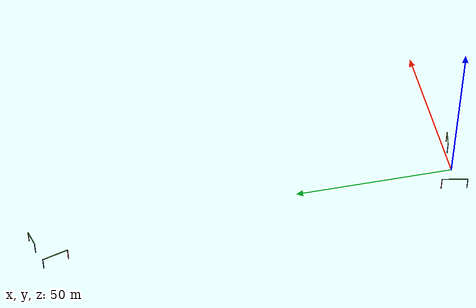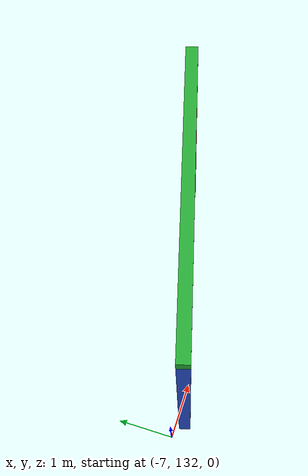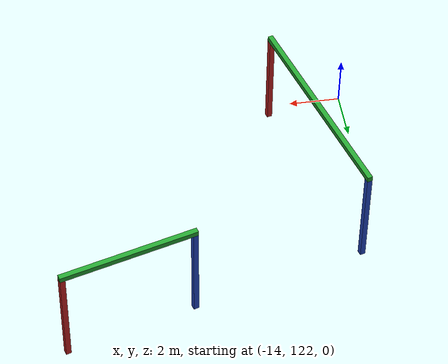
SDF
<sdf version="1.4">
 <world name="vrc_task_1">
  <scene><ambient>0.2 0.2 0.2 1.0</ambient><grid>false</grid></scene>
  <physics type="ode">
   <gravity>0 0 -9.81</gravity>
   <ode>
    <solver><type>quick</type><iters>50</iters><sor>1.4</sor></solver>
    <constraints>
     <cfm>0.0</cfm>
     <erp>0.2</erp>
     <contact_max_correcting_vel>100.0</contact_max_correcting_vel>
     <contact_surface_layer>0.0</contact_surface_layer>
    </constraints>
   </ode>
   <real_time_update_rate>1000</real_time_update_rate>
   <max_step_size>0.001</max_step_size>
  </physics>
  <light type="directional" name="sun">
   <cast_shadows>false</cast_shadows>
   <pose>0 0 100 0 0 0</pose>
   <diffuse>0.8 0.8 0.8 1</diffuse>
   <specular>0.9 0.9 0.9 1</specular>
   <attenuation>
    <range>1000</range>
    <constant>0.9</constant>
    <linear>0.01</linear>
    <quadratic>0.001</quadratic>
   </attenuation>
   <direction>0.2 0.2 -0.9</direction>
  </light>
  <light type="point" name="light_bulb">
   <cast_shadows>false</cast_shadows>
   <pose>11.48 -7.62 5 0 0 0</pose>
   <diffuse>0.3 0.3 0.3 1</diffuse>
   <specular>0.0 0.0 0.0 1</specular>
   <attenuation>
    <range>80</range>
    <constant>0.9</constant>
    <linear>0.01</linear>
    <quadratic>0.001</quadratic>
   </attenuation>
  </light>
  <include>
   <uri>model://gate</uri>
   <name>gate_0</name>
   <static>true</static>
   <pose>9.75 -1.15 2.0 0 0 1.3491</pose>
  </include>
  <include>
   <uri>model://vehicle_gate</uri>
   <name>vehiclegate_1</name>
   <static>true</static>
   <pose>-7.33 1.38 2 0 0 2.956</pose>
  </include>
  <include>
   <uri>model://vehicle_gate</uri>
   <name>vehiclegate_2</name>
   <static>true</static>
   <pose>-12.13 126.33 2.0 0 0 0.279</pose>
  </include>
  <include>
   <uri>model://gate</uri>
   <name>gate_3</name>
   <static>true</static>
   <pose>-4.287 132.542 2.0 0 0 1.8505</pose>
  </include>
  <model name="road_boxes">
   <static>true</static>
   <link name="link">
    <collision name="collision_1">
     <pose>-25.5 5.1 0 0 0 -0.197</pose>
     <geometry><box><size>51 7.34 0.02</size></box></geometry>
     <surface><friction><ode><mu>100</mu><mu2>50</mu2></ode></friction></surface>
    </collision>
    <collision name="collision_2">
     <pose>-75 30 0 0 0 -0.6747</pose>
     <geometry><box><size>66.0 7.34 0.02</size></box></geometry>
     <surface><friction><ode><mu>100</mu><mu2>50</mu2></ode></friction></surface>
    </collision>
    <collision name="collision_3">
     <pose>-100 76 0 0 0 0</pose>
     <geometry><box><size>7.34 56 0.02</size></box></geometry>
     <surface><friction><ode><mu>100</mu><mu2>50</mu2></ode></friction></surface>
    </collision>
    <collision name="collision_4">
     <pose>-50 115 0 0 0 0.291</pose>
     <geometry><box><size>105 7.34 0.02</size></box></geometry>
     <surface><friction><ode><mu>100</mu><mu2>50</mu2></ode></friction></surface>
    </collision>
    <collision name="collision_5">
     <pose>-5 135 0 0 0 1.8505</pose>
     <geometry><box><size>6 5 0.02</size></box></geometry>
     <surface><friction><ode><mu>100</mu><mu2>50</mu2></ode></friction></surface>
    </collision>
   </link>
  </model>
  <plugin filename="libVRCPlugin.so" name="vrc_plugin">
   <atlas><model_name>atlas</model_name><pin_link>utorso</pin_link></atlas>
   <drc_vehicle>
    <model_name>drc_vehicle</model_name>
    <seat_link>polaris_ranger_ev::chassis</seat_link>
   </drc_vehicle>
   <drc_fire_hose>
    <fire_hose_model>fire_hose</fire_hose_model>
    <coupling_link>coupling</coupling_link>
    <standpipe_model>standpipe</standpipe_model>
    <spout_link>standpipe</spout_link>
    <thread_pitch>-1000</thread_pitch>
    <coupling_relative_pose>1.17038e-05 -0.125623 0.35 -0.0412152 -1.57078 1.61199</coupling_relative_pose>
   </drc_fire_hose>
  </plugin>
  <plugin filename="libVRCScoringPlugin.so" name="vrc_scoring">
   <score_file>/tmp/vrc_final_task4/score.log</score_file>
  </plugin>
 </world>
</sdf>

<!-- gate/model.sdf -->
<sdf version="1.4">
  <model name="gate">
    <static>true</static>
    <pose>0 0 2.0 0 0 0</pose>
    <link name="link">
      <collision name="right_collision">
        <pose>0 -2.5 0 0 0 0</pose>
        <geometry>
          <box>
            <size>0.2 0.2 4.0</size>
          </box>
        </geometry>
      </collision>
      <visual name="right_visual">
        <pose>0 -2.5 0 0 0 0</pose>
        <geometry>
          <box>
            <size>0.2 0.2 4.0</size>
          </box>
        </geometry>
        <material>
          <script>
            <uri>model://gate/materials/scripts/gate.material</uri>
            <uri>model://gate/materials/textures</uri>
            <name>vrc/red_gate</name>
          </script>
        </material>
      </visual>

      <collision name="left_collision">
        <pose>0 2.5 0 0 0 0</pose>
        <geometry>
          <box>
            <size>0.2 0.2 4.0</size>
          </box>
        </geometry>
      </collision>
      <visual name="left_visual">
        <pose>0 2.5 0 0 0 0</pose>
        <geometry>
          <box>
            <size>0.2 0.2 4.0</size>
          </box>
        </geometry>
        <material>
          <script>
            <uri>model://gate/materials/scripts/gate.material</uri>
            <uri>model://gate/materials/textures</uri>
            <name>vrc/blue_gate</name>
          </script>
        </material>
      </visual>

      <collision name="top_collision">
        <pose>0 0 2.1 0 0 0</pose>
        <geometry>
          <box>
            <size>0.2 5.2 0.2</size>
          </box>
        </geometry>
      </collision>
      <visual name="top_visual">
        <pose>0 0 2.1 0 0 0</pose>
        <geometry>
          <box>
            <size>0.2 5.2 0.2</size>
          </box>
        </geometry>
        <material>
          <script>
            <uri>model://gate/materials/scripts/gate.material</uri>
            <uri>model://gate/materials/textures</uri>
            <name>vrc/green_gate</name>
          </script>
        </material>
      </visual>
    </link>
  </model>
</sdf>

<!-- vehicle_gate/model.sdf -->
<sdf version="1.4">
  <model name="vehicle_gate">
    <static>true</static>
    <pose>0 0 2.0 0 0 0</pose>
    <link name="link">
      <collision name="right_collision">
        <pose>0 -4.0 0 0 0 0</pose>
        <geometry>
          <box>
            <size>0.2 0.2 4.0</size>
          </box>
        </geometry>
      </collision>
      <visual name="right_visual">
        <pose>0 -4.0 0 0 0 0</pose>
        <geometry>
          <box>
            <size>0.2 0.2 4.0</size>
          </box>
        </geometry>
        <material>
          <script>
            <uri>model://gate/materials/scripts/gate.material</uri>
            <uri>model://gate/materials/textures</uri>
            <name>vrc/red_gate</name>
          </script>
        </material>
      </visual>

      <collision name="left_collision">
        <pose>0 4.0 0 0 0 0</pose>
        <geometry>
          <box>
            <size>0.2 0.2 4.0</size>
          </box>
        </geometry>
      </collision>
      <visual name="left_visual">
        <pose>0 4.0 0 0 0 0</pose>
        <geometry>
          <box>
            <size>0.2 0.2 4.0</size>
          </box>
        </geometry>
        <material>
          <script>
            <uri>model://gate/materials/scripts/gate.material</uri>
            <uri>model://gate/materials/textures</uri>
            <name>vrc/blue_gate</name>
          </script>
        </material>
      </visual>

      <collision name="top_collision">
        <pose>0 0 2.1 0 0 0</pose>
        <geometry>
          <box>
            <size>0.2 8.2 0.2</size>
          </box>
        </geometry>
      </collision>
      <visual name="top_visual">
        <pose>0 0 2.1 0 0 0</pose>
        <geometry>
          <box>
            <size>0.2 8.2 0.2</size>
          </box>
        </geometry>
        <material>
          <script>
            <uri>model://gate/materials/scripts/gate.material</uri>
            <uri>model://gate/materials/textures</uri>
            <name>vrc/green_gate</name>
          </script>
        </material>
      </visual>
    </link>
  </model>
</sdf>
